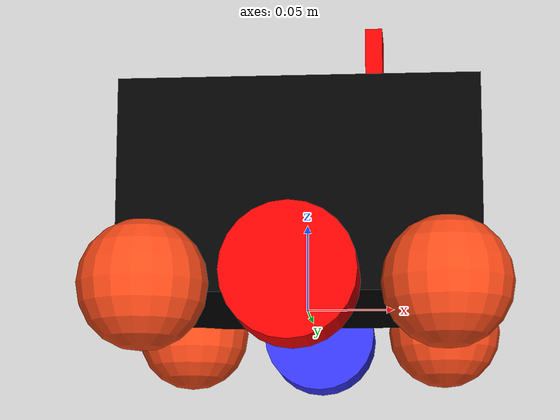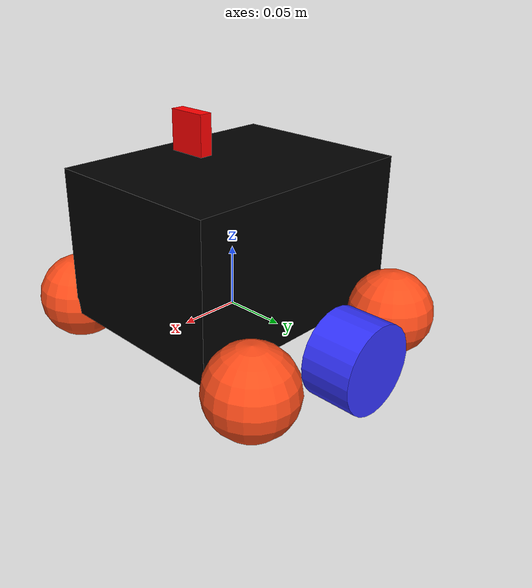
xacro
<?xml version="1.0"?>
<robot xmlns:xacro="http://www.ros.org/wiki/xacro"  name="robot">

    <xacro:include filename="robot_core.xacro"/>

    <xacro:include filename="gazebo_control.xacro"/>

    <xacro:include filename="camera.xacro"/>

</robot>

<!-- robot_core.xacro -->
<robot xmlns:xacro="http://www.ros.org/wiki/xacro" >

    <xacro:include filename="inertial_macros.xacro"/>

    <material name="white">
        <color rgba="1 1 1 1"/>
    </material>

    <material name="orange">
        <color rgba="1 0.3 0.1 1"/>
    </material>

    <material name="blue">
        <color rgba="0.2 0.2 1 1"/>
    </material>

    <material name="black">
        <color rgba="0 0 0 1"/>
    </material>

    <material name="red">
        <color rgba="1 0 0 1"/>
    </material>

    <!-- BASE LINK -->

    <link name="base_link">

    </link>

    <!-- CHASSIS LINK -->

    <joint name="chassis_joint" type="fixed">
        <parent link="base_link"/>
        <child link="chassis"/>
        <origin xyz="-0.1 0 0"/>
    </joint>

    <link name="chassis">
        <visual>
            <origin xyz="0.1 0 0.06"/>
            <geometry>
                <box size="0.2 0.15 0.12"/>
            </geometry>
            <material name="black"/>
        </visual>
        <collision>
            <origin xyz="0.1 0 0.06"/>
            <geometry>
                <box size="0.2 0.15 0.12"/>
            </geometry>
        </collision>
        <xacro:inertial_box mass="0.5" x="0.2" y="0.15" z="0.12">
            <origin xyz="0.1 0 0.06" rpy="0 0 0"/>
        </xacro:inertial_box>
    </link>

    <gazebo reference="chassis">
        <material>Gazebo/Black</material>
    </gazebo>

    <!-- LEFT WHEEL LINK -->

    <joint name="left_wheel_joint" type="continuous">
        <parent link="base_link"/>
        <child link="left_wheel"/>
        <origin xyz="0 0.125 0" rpy="-${pi/2} 0 0"/>
        <axis xyz="0 0 1"/>
    </joint>

     <link name="left_wheel">
        <visual>
            <geometry>
                <cylinder radius="0.035" length="0.04"/>
            </geometry>
            <material name="blue"/>
        </visual>
        <collision>
            <geometry>
                <cylinder radius="0.035" length="0.04"/>
            </geometry>
        </collision>
        <xacro:inertial_cylinder mass="0.1" length="0.04" radius="0.035">
            <origin xyz="0 0 0" rpy="0 0 0"/>
        </xacro:inertial_cylinder>
    </link>

    <gazebo reference="left_wheel">
        <material>Gazebo/Red</material>
    </gazebo>

    <!-- RIGHT WHEEL LINK -->

    <joint name="right_wheel_joint" type="continuous">
        <parent link="base_link"/>
        <child link="right_wheel"/>
        <origin xyz="0 -0.125 0" rpy="${pi/2} 0 0"/>
        <axis xyz="0 0 -1"/>
    </joint>

     <link name="right_wheel">
        <visual>
            <geometry>
                <cylinder radius="0.035" length="0.04"/>
            </geometry>
            <material name="red"/>
        </visual>
        <collision>
            <geometry>
                <cylinder radius="0.035" length="0.04"/>
            </geometry>
        </collision>
        <xacro:inertial_cylinder mass="0.1" length="0.04" radius="0.035">
            <origin xyz="0 0 0" rpy="0 0 0"/>
        </xacro:inertial_cylinder>
    </link>

    <gazebo reference="right_wheel">
        <material>Gazebo/Red</material>
    </gazebo>

    <!-- BACK RIGHT CASTER WHEEL (TANK TREAD WHEELS) LINK -->

    <joint name="back_right_caster_wheel_joint" type="fixed">
        <parent link="chassis"/>
        <child link="br_caster_wheel"/>
        <origin xyz="0.02 -0.1 0"/>
    </joint>

    <link name="br_caster_wheel">
        <visual>
            <geometry>
                <sphere radius="0.035"/>
            </geometry>
            <material name="orange"/>
        </visual>
        <collision>
            <geometry>
                <sphere radius="0.035"/>
            </geometry>
        </collision>
        <xacro:inertial_sphere mass="0.1" radius="0.035">
            <origin xyz="0 0 0" rpy="0 0 0"/>
        </xacro:inertial_sphere>
    </link>

    <gazebo reference="br_caster_wheel">
        <material>Gazebo/Orange</material>
        <mu1 value="0.0001"/>
        <mu2 value="0.0001"/>
    </gazebo>

    <!-- BACK LEFT CASTER WHEEL (TANK TREAD WHEELS) LINK -->

    <joint name="back_left_caster_wheel_joint" type="fixed">
        <parent link="chassis"/>
        <child link="bl_caster_wheel"/>
        <origin xyz="0.02 0.1 0"/>
    </joint>

    <link name="bl_caster_wheel">
        <visual>
            <geometry>
                <sphere radius="0.035"/>
            </geometry>
           <material name="orange"/>
        </visual>
        <collision>
            <geometry>
                <sphere radius="0.035"/>
            </geometry>
        </collision>
        <xacro:inertial_sphere mass="0.1" radius="0.035">
            <origin xyz="0 0 0" rpy="0 0 0"/>
        </xacro:inertial_sphere>
    </link>

    <gazebo reference="bl_caster_wheel">
        <material>Gazebo/Orange</material>
        <mu1 value="0.0001"/>
        <mu2 value="0.0001"/>
    </gazebo>

    <!-- FRONT RIGHT CASTER WHEEL (TANK TREAD WHEELS) LINK -->

    <joint name="front_right_caster_wheel_joint" type="fixed">
        <parent link="chassis"/>
        <child link="fr_caster_wheel"/>
        <origin xyz="0.18 -0.1 0"/>
    </joint>

    <link name="fr_caster_wheel">
        <visual>
            <geometry>
                <sphere radius="0.035"/>
            </geometry>
            <material name="orange"/>
        </visual>
        <collision>
            <geometry>
                <sphere radius="0.035"/>
            </geometry>
        </collision>
        <xacro:inertial_sphere mass="0.1" radius="0.035">
            <origin xyz="0 0 0" rpy="0 0 0"/>
        </xacro:inertial_sphere>
    </link>

    <gazebo reference="fr_caster_wheel">
        <material>Gazebo/Orange</material>
        <mu1 value="0.0001"/>
        <mu2 value="0.0001"/>
    </gazebo>

    <!-- FRONT LEFT CASTER WHEEL (TANK TREAD WHEELS) LINK -->

    <joint name="front_left_caster_wheel_joint" type="fixed">
        <parent link="chassis"/>
        <child link="fl_caster_wheel"/>
        <origin xyz="0.18 0.1 0"/>
    </joint>

    <link name="fl_caster_wheel">
        <visual>
            <geometry>
                <sphere radius="0.035"/>
            </geometry>
            <material name="orange"/>
        </visual>
        <collision>
            <geometry>
                <sphere radius="0.035"/>
            </geometry>
        </collision>
        <xacro:inertial_sphere mass="0.1" radius="0.035">
            <origin xyz="0 0 0" rpy="0 0 0"/>
        </xacro:inertial_sphere>
    </link>

    <gazebo reference="fl_caster_wheel">
        <material>Gazebo/Orange</material>
        <mu1 value="0.0001"/>
        <mu2 value="0.0001"/>
    </gazebo>

</robot>

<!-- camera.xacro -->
<robot xmlns:xacro="http://www.ros.org/wiki/xacro">

    <joint name="camera_joint" type="fixed">
        <parent link="chassis"/>
        <child link="camera_link"/>
        <origin xyz="0.140 0 0.15" rpy="0 0 0"/>
    </joint>

    <link name="camera_link">
        <visual>
            <geometry>
                <box size="0.010 0.03 0.03"/>
            </geometry>
            <material name="red"/>
        </visual>
    </link>

    <joint name="camera_optical_joint" type="fixed">
        <parent link="camera_link"/>
        <child link="camera_link_optical"/>
        <origin xyz="0 0 0" rpy="${-pi/2} 0 ${-pi/2}"/>
    </joint>

    <link name="camera_link_optical"></link>

    <gazebo reference="camera_link">
        <material>Gazebo/Red</material>

        <sensor name="camera" type="camera">
            <pose> 0 0 0 0 </pose>
            <visualize>true</visualize>
            <update_rate>10</update_rate>
            <camera>
                <horizontal_fov>1.089</horizontal_fov>
                <image>
                    <format>R8G8B8</format>
                    <width>640</width>
                    <height>480</height>
                </image>
                <clip>
                    <near>0.05</near>
                    <far>8.0</far>
                </clip>
            </camera>

            <plugin name="camera_controller" filename="libgazebo_ros_camera.so">
                <frame_name>camera_link_optical</frame_name>
            </plugin>
        </sensor>
    </gazebo>

</robot>
